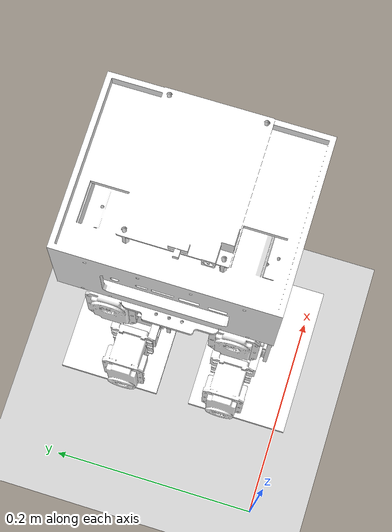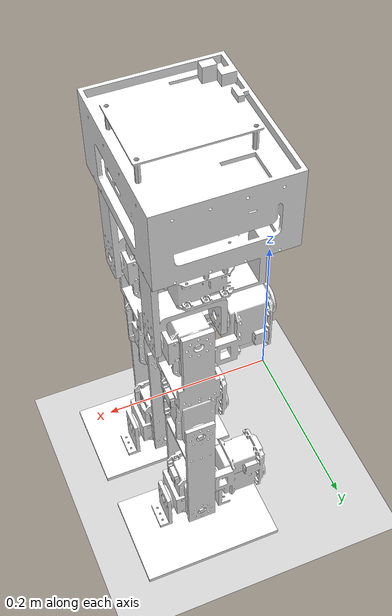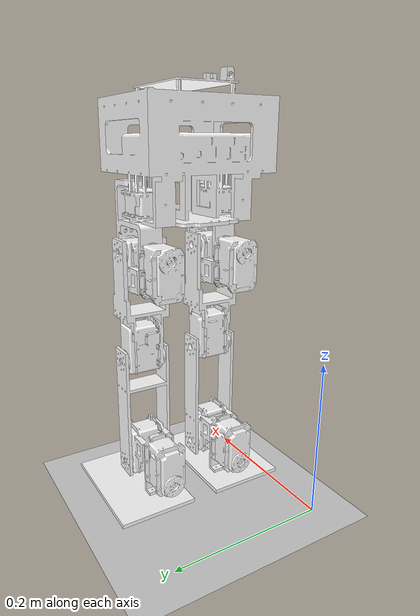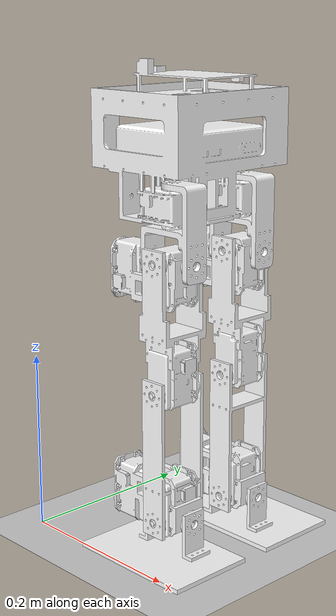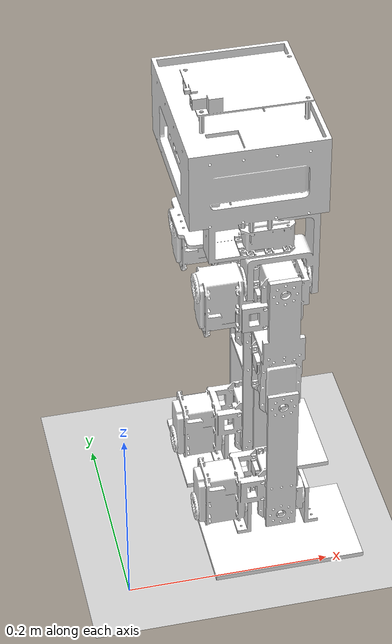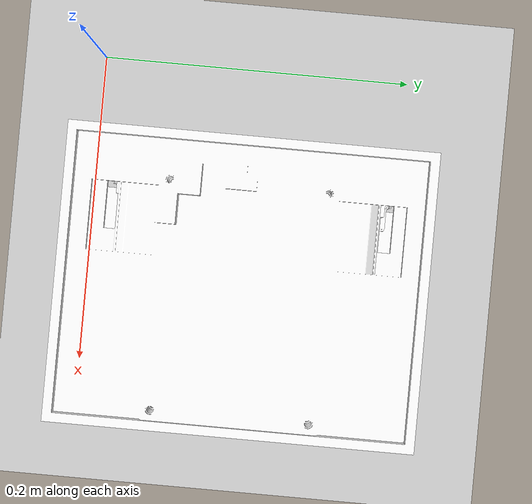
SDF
<?xml version="1.0" ?>
<sdf version="1.6">
  <world name="kubot">
     <physics name="default_physics" default="0" type="ode">
      <max_step_size>0.001</max_step_size>
      <real_time_factor>1</real_time_factor>
      <real_time_update_rate>1000</real_time_update_rate>
      <ode>
        <solver>
          <type>quick</type>
          <iters>100</iters>
          <sor>1.0</sor>
          <use_dynamic_moi_rescaling>false</use_dynamic_moi_rescaling>
        </solver>
      </ode>
    </physics>

    <include>
      <uri>model://ground_plane</uri>
    </include>

    <include>
      <uri>model://sun</uri>
    </include>

    <include>
      <uri>model://kubot22</uri>
    <pose frame=''>0 0 0.40 -1.5708 0 0</pose> <!-- kubot -->
      <plugin name="plugin" filename="libkubot_study_pkg.so"/>
    </include>
  </world>
</sdf>

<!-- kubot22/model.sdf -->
<sdf version='1.6'>
  <model name='kubot22'>
     <joint name="fixed to ground" type="floating">
      <parent>world</parent>
      <child>base_link</child>
    </joint>

    <link name='base_link'>
      <pose frame=''>0 0 0 0 -0 0</pose>
      <inertial>
        <pose frame=''>0.134878 -0.03362 0.106921 0 -0 0</pose>
        <mass>1.17505</mass>
        <inertia>
          <ixx>0.201876</ixx>
          <ixy>0</ixy>
          <ixz>0</ixz>
          <iyy>0.207047</iyy>
          <iyz>0</iyz>
          <izz>0.00947106</izz>
        </inertia>
      </inertial>
      <visual name='base_link_visual'>
        <pose frame=''>0 0 0 0 -0 0</pose>
        <geometry>
          <mesh>
            <scale>1 1 1</scale>
            <uri>model://kubot22/meshes/base_link.STL</uri>
          </mesh>
        </geometry>
	<material>
	 <ambient>47 157 39 1</ambient>
	 <diffuse>1 1 1 1</diffuse>
	 <emissive>0 0 0 1</emissive>
	 <specular>0 0 0 0</specular>
	</material>
      </visual>
    </link>

    <link name='L_P_Link'>
      <pose frame=''>0.159486 0.040474 0.15696 1.5708 -0 0</pose>
      <inertial>
        <pose frame=''>0.010194 -0 -0.000143 0 -0 0</pose>
        <mass>0.03344</mass>
        <inertia>
          <ixx>0.00008</ixx>
          <ixy>0</ixy>
          <ixz>0</ixz>
          <iyy>0.00011</iyy>
          <iyz>0</iyz>
          <izz>0.00003</izz>
        </inertia>
      </inertial>
      <visual name='L_P_Link_visual'>
        <pose frame=''>0 0 0 0 -0 0</pose>
        <geometry>
          <mesh>
            <scale>1 1 1</scale>
            <uri>model://kubot22/meshes/L_P_Link.STL</uri>
          </mesh>
        </geometry>
	<material>
	 <ambient>0 0 128 1</ambient>
	 <diffuse>1 1 1 1</diffuse>
	 <emissive>0 0 0 1</emissive>
	 <specular>0 0 0 0</specular>
	</material>
      </visual>
    </link>
    <joint name='LP' type='revolute'>
      <child>L_P_Link</child>
      <parent>base_link</parent>
      <axis>
        <xyz>0 -1 0</xyz>
        <limit>
          <lower>-3.14</lower>
          <upper>+3.14</upper>
          <effort>0</effort>
          <velocity>0</velocity>
        </limit>
        <dynamics>
          <spring_reference>0</spring_reference>
          <spring_stiffness>0</spring_stiffness>
        </dynamics>
        <use_parent_model_frame>1</use_parent_model_frame>
      </axis>
    </joint>

    <link name='L_Pm_Link'>
      <pose frame=''>0.126966 0.074974 0.15696 1.5708 -0 0</pose>
      <inertial>
        <pose frame=''>0.007077 3.9e-05 -0.015156 0 -0 0</pose>
        <mass>0.26897</mass>
        <inertia>
          <ixx>0.00014</ixx>
          <ixy>0</ixy>
          <ixz>0</ixz>
          <iyy>0.00031</iyy>
          <iyz>0</iyz>
          <izz>0.00022</izz>
        </inertia>
      </inertial>
      <visual name='L_Pm_Link_visual'>
        <pose frame=''>0 0 0 0 -0 0</pose>
        <geometry>
          <mesh>
            <scale>1 1 1</scale>
            <uri>model://kubot22/meshes/L_Pm_Link.STL</uri>
          </mesh>
        </geometry>
	<material>
	 <ambient>47 157 39 1</ambient>
	 <diffuse>1 1 1 1</diffuse>
	 <emissive>0 0 0 1</emissive>
	 <specular>0 0 0 0</specular>
	</material>
      </visual>
    </link>
    <joint name='LPm' type='revolute'>
      <child>L_Pm_Link</child>
      <parent>L_P_Link</parent>
      <axis>
        <xyz>1 0 0</xyz>
        <limit>
          <lower>-3.14</lower>
          <upper>+3.14</upper>
          <effort>0</effort>
          <velocity>0</velocity>
        </limit>
        <dynamics>
          <spring_reference>0</spring_reference>
          <spring_stiffness>0</spring_stiffness>
        </dynamics>
        <use_parent_model_frame>1</use_parent_model_frame>
      </axis>
    </joint>

    <link name='L_Pd_Link'>
      <pose frame=''>0.159666 0.074974 0.18046 1.5708 -0 0</pose>
      <inertial>
        <pose frame=''>2e-06 -0.023322 -0.098565 0 -0 0</pose>
        <mass>0.20444</mass>
        <inertia>
          <ixx>0.00177</ixx>
          <ixy>0</ixy>
          <ixz>0</ixz>
          <iyy>0.00153</iyy>
          <iyz>0</iyz>
          <izz>0.0003</izz>
        </inertia>
      </inertial>
      <visual name='L_Pd_Link_visual'>
        <pose frame=''>0 0 0 0 -0 0</pose>
        <geometry>
          <mesh>
            <scale>1 1 1</scale>
            <uri>model://kubot22/meshes/L_Pd_Link.STL</uri>
          </mesh>
        </geometry>
	<material>
	 <ambient>0 0 128 1</ambient>
	 <diffuse>1 1 1 1</diffuse>
	 <emissive>0 0 0 1</emissive>
	 <specular>0 0 0 0</specular>
	</material>
      </visual>
    </link>
    <joint name='LPd' type='revolute'>
      <child>L_Pd_Link</child>
      <parent>L_Pm_Link</parent>
      <axis>
        <xyz>0 0 1</xyz>
        <limit>
          <lower>-3.14</lower>
          <upper>+3.14</upper>
          <effort>0</effort>
          <velocity>0</velocity>
        </limit>
        <dynamics>
          <spring_reference>0</spring_reference>
          <spring_stiffness>0</spring_stiffness>
        </dynamics>
        <use_parent_model_frame>1</use_parent_model_frame>
      </axis>
    </joint>

    <link name='L_K_Link'>
      <pose frame=''>0.159666 0.212974 0.18306 1.5708 -0 0</pose>
      <inertial>
        <pose frame=''>0 -0.0259 -0.066982 0 -0 0</pose>
        <mass>0.05316</mass>
        <inertia>
          <ixx>0.00038</ixx>
          <ixy>0</ixy>
          <ixz>0</ixz>
          <iyy>0.00032</iyy>
          <iyz>0</iyz>
          <izz>0.00007</izz>
        </inertia>
      </inertial>
      <visual name='L_K_Link_visual'>
        <pose frame=''>0 0 0 0 -0 0</pose>
        <geometry>
          <mesh>
            <scale>1 1 1</scale>
            <uri>model://kubot22/meshes/L_K_Link.STL</uri>
          </mesh>
        </geometry>
	<material>
	 <ambient>0 0 128 1</ambient>
	 <diffuse>1 1 1 1</diffuse>
	 <emissive>0 0 0 1</emissive>
	 <specular>0 0 0 0</specular>
	</material>
      </visual>
    </link>
    <joint name='LK' type='revolute'>
      <child>L_K_Link</child>
      <parent>L_Pd_Link</parent>
      <axis>
        <xyz>0 0 1</xyz>
        <limit>
          <lower>-3.14</lower>
          <upper>+3.14</upper>
          <effort>0</effort>
          <velocity>0</velocity>
        </limit>
        <dynamics>
          <spring_reference>0</spring_reference>
          <spring_stiffness>0</spring_stiffness>
        </dynamics>
        <use_parent_model_frame>1</use_parent_model_frame>
      </axis>
    </joint>

    <link name='L_A_Link'>
      <pose frame=''>0.159666 0.355974 0.18306 1.5708 -0 0</pose>
      <inertial>
        <pose frame=''>-0.025967 -0.025948 0.01564 0 -0 0</pose>
        <mass>0.32297</mass>
        <inertia>
          <ixx>0.0004</ixx>
          <ixy>0</ixy>
          <ixz>0</ixz>
          <iyy>0.00053</iyy>
          <iyz>0</iyz>
          <izz>0.00064</izz>
        </inertia>
      </inertial>
      <visual name='L_A_Link_visual'>
        <pose frame=''>0 0 0 0 -0 0</pose>
        <geometry>
          <mesh>
            <scale>1 1 1</scale>
            <uri>model://kubot22/meshes/L_A_Link.STL</uri>
          </mesh>
        </geometry>
	<material>
	 <ambient>47 157 39 1</ambient>
	 <diffuse>1 1 1 1</diffuse>
	 <emissive>0 0 0 1</emissive>
	 <specular>0 0 0 0</specular>
	</material>
      </visual>
    </link>
    <joint name='LA' type='revolute'>
      <child>L_A_Link</child>
      <parent>L_K_Link</parent>
      <axis>
        <xyz>0 0 1</xyz>
        <limit>
          <lower>-3.14</lower>
          <upper>+3.14</upper>
          <effort>0</effort>
          <velocity>0</velocity>
        </limit>
        <dynamics>
          <spring_reference>0</spring_reference>
          <spring_stiffness>0</spring_stiffness>
        </dynamics>
        <use_parent_model_frame>1</use_parent_model_frame>
      </axis>
    </joint>

    <link name='L_F_Link'>
      <pose frame=''>0.129466 0.355974 0.15706 1.5708 -0 0</pose>
      <inertial>
        <pose frame=''>0.031064 0.014394 -0.034382 0 -0 0</pose>
        <mass>0.05026</mass>
        <inertia>
          <ixx>0.00027</ixx>
          <ixy>0</ixy>
          <ixz>0</ixz>
          <iyy>0.00053</iyy>
          <iyz>0</iyz>
          <izz>0.00064</izz>
        </inertia>
      </inertial>
      <collision name='L_F_Link_collision'>
        <pose frame=''>0.03 0.015 -0.037 0 -0 0</pose>
        <geometry>
	 <box>
	 <size>0.15 0.095 0.005</size>
	 </box>
        </geometry>
            <surface>
             <contact>
              <ode>
    	    <kp>10000000</kp>
                <kd>10000</kd>
                <max_vel>0.1</max_vel>
                <min_depth>0.001</min_depth>
              </ode>
             </contact>
            </surface>
      </collision>
      <visual name='L_F_Link_visual'>
        <pose frame=''>0 0 0 0 -0 0</pose>
        <geometry>
          <mesh>
            <scale>1 1 1</scale>
            <uri>model://kubot22/meshes/L_F_Link.STL</uri>
          </mesh>
        </geometry>
	<material>
	 <ambient>0 0 128 1</ambient>
	 <diffuse>1 1 1 1</diffuse>
	 <emissive>0 0 0 1</emissive>
	 <specular>0 0 0 0</specular>
	</material>
      </visual>
    </link>
    <joint name='LF' type='revolute'>
      <child>L_F_Link</child>
      <parent>L_A_Link</parent>
      <axis>
        <xyz>1 0 0</xyz>
        <limit>
          <lower>-3.14</lower>
          <upper>+3.14</upper>
          <effort>0</effort>
          <velocity>0</velocity>
        </limit>
        <dynamics>
          <spring_reference>0</spring_reference>
          <spring_stiffness>0</spring_stiffness>
        </dynamics>
        <use_parent_model_frame>1</use_parent_model_frame>
      </axis>
    </joint>

    <link name='R_P_Link'>
      <pose frame=''>0.159486 0.040474 0.05696 1.5708 -0 0</pose>
      <inertial>
        <pose frame=''>0.010194 -0 -0.000143 0 -0 0</pose>
        <mass>0.03344</mass>
        <inertia>
          <ixx>0.00008</ixx>
          <ixy>0</ixy>
          <ixz>0</ixz>
          <iyy>0.00011</iyy>
          <iyz>0</iyz>
          <izz>0.00003</izz>
        </inertia>
      </inertial>
      <visual name='R_P_Link_visual'>
        <pose frame=''>0 0 0 0 -0 0</pose>
        <geometry>
          <mesh>
            <scale>1 1 1</scale>
            <uri>model://kubot22/meshes/R_P_Link.STL</uri>
          </mesh>
        </geometry>
	<material>
	 <ambient>0 0 128 1</ambient>
	 <diffuse>1 1 1 1</diffuse>
	 <emissive>0 0 0 1</emissive>
	 <specular>0 0 0 0</specular>
	</material>
      </visual>
    </link>
    <joint name='RP' type='revolute'>
      <child>R_P_Link</child>
      <parent>base_link</parent>
      <axis>
        <xyz>0 -1 0</xyz>
        <limit>
          <lower>-3.14</lower>
          <upper>+3.14</upper>
          <effort>0</effort>
          <velocity>0</velocity>
        </limit>
        <dynamics>
          <spring_reference>0</spring_reference>
          <spring_stiffness>0</spring_stiffness>
        </dynamics>
        <use_parent_model_frame>1</use_parent_model_frame>
      </axis>
    </joint>

    <link name='R_Pm_Link'>
      <pose frame=''>0.126966 0.074974 0.05696 1.5708 -0 0</pose>
      <inertial>
        <pose frame=''>0.007077 -3.9e-05 -0.015156 0 -0 0</pose>
        <mass>0.26897</mass>
        <inertia>
          <ixx>0.0028</ixx>
          <ixy>0</ixy>
          <ixz>0</ixz>
          <iyy>0.00031</iyy>
          <iyz>0</iyz>
          <izz>0.0029</izz>
        </inertia>
      </inertial>
      <visual name='R_Pm_Link_visual'>
        <pose frame=''>0 0 0 0 -0 0</pose>
        <geometry>
          <mesh>
            <scale>1 1 1</scale>
            <uri>model://kubot22/meshes/R_Pm_Link.STL</uri>
          </mesh>
        </geometry>
	<material>
	 <ambient>47 157 39 1</ambient>
	 <diffuse>1 1 1 1</diffuse>
	 <emissive>0 0 0 1</emissive>
	 <specular>0 0 0 0</specular>
	</material>
      </visual>
    </link>
    <joint name='RPm' type='revolute'>
      <child>R_Pm_Link</child>
      <parent>R_P_Link</parent>
      <axis>
        <xyz>1 0 0</xyz>
        <limit>
          <lower>-3.14</lower>
          <upper>+3.14</upper>
          <effort>0</effort>
          <velocity>0</velocity>
        </limit>
        <dynamics>
          <spring_reference>0</spring_reference>
          <spring_stiffness>0</spring_stiffness>
        </dynamics>
        <use_parent_model_frame>1</use_parent_model_frame>
      </axis>
    </joint>

    <link name='R_Pd_Link'>
      <pose frame=''>0.159666 0.074974 0.03346 1.5708 -0 0</pose>
      <inertial>
        <pose frame=''>-2e-06 0.023322 -0.098565 0 -0 0</pose>
        <mass>0.20444</mass>
        <inertia>
          <ixx>0.0048</ixx>
          <ixy>0</ixy>
          <ixz>0</ixz>
          <iyy>0.0015</iyy>
          <iyz>0</iyz>
          <izz>0.0033</izz>
        </inertia>
      </inertial>
      <visual name='R_Pd_Link_visual'>
        <pose frame=''>0 0 0 0 -0 0</pose>
        <geometry>
          <mesh>
            <scale>1 1 1</scale>
            <uri>model://kubot22/meshes/R_Pd_Link.STL</uri>
          </mesh>
        </geometry>
	<material>
	 <ambient>0 0 128 1</ambient>
	 <diffuse>1 1 1 1</diffuse>
	 <emissive>0 0 0 1</emissive>
	 <specular>0 0 0 0</specular>
	</material>
      </visual>
    </link>
    <joint name='RPd' type='revolute'>
      <child>R_Pd_Link</child>
      <parent>R_Pm_Link</parent>
      <axis>
        <xyz>0 0 1</xyz>
        <limit>
          <lower>-3.14</lower>
          <upper>+3.14</upper>
          <effort>0</effort>
          <velocity>0</velocity>
        </limit>
        <dynamics>
          <spring_reference>0</spring_reference>
          <spring_stiffness>0</spring_stiffness>
        </dynamics>
        <use_parent_model_frame>1</use_parent_model_frame>
      </axis>
    </joint>

    <link name='R_K_Link'>
      <pose frame=''>0.159666 0.212974 0.03086 1.5708 -0 0</pose>
      <inertial>
        <pose frame=''>-0 0.0259 -0.076018 0 -0 0</pose>
        <mass>0.05316</mass>
        <inertia>
          <ixx>0.00038</ixx>
          <ixy>0</ixy>
          <ixz>0</ixz>
          <iyy>0.00032</iyy>
          <iyz>0</iyz>
          <izz>0.00007</izz>
        </inertia>
      </inertial>
      <visual name='R_K_Link_visual'>
        <pose frame=''>0 0 0 0 -0 0</pose>
        <geometry>
          <mesh>
            <scale>1 1 1</scale>
            <uri>model://kubot22/meshes/R_K_Link.STL</uri>
          </mesh>
        </geometry>
	<material>
	 <ambient>0 0 128 1</ambient>
	 <diffuse>1 1 1 1</diffuse>
	 <emissive>0 0 0 1</emissive>
	 <specular>0 0 0 0</specular>
	</material>
      </visual>
    </link>
    <joint name='RK' type='revolute'>
      <child>R_K_Link</child>
      <parent>R_Pd_Link</parent>
      <axis>
        <xyz>0 0 1</xyz>
        <limit>
          <lower>-3.14</lower>
          <upper>+3.14</upper>
          <effort>0</effort>
          <velocity>0</velocity>
        </limit>
        <dynamics>
          <spring_reference>0</spring_reference>
          <spring_stiffness>0</spring_stiffness>
        </dynamics>
        <use_parent_model_frame>1</use_parent_model_frame>
      </axis>
    </joint>

    <link name='R_A_Link'>
      <pose frame=''>0.159666 0.355974 0.03086 1.5708 -0 0</pose>
      <inertial>
        <pose frame=''>-0.02597 0.025944 0.01564 0 -0 0</pose>
        <mass>0.32297</mass>
        <inertia>
          <ixx>0.0004</ixx>
          <ixy>0</ixy>
          <ixz>0</ixz>
          <iyy>0.00053</iyy>
          <iyz>0</iyz>
          <izz>0.00064</izz>
        </inertia>
      </inertial>
      <visual name='R_A_Link_visual'>
        <pose frame=''>0 0 0 0 -0 0</pose>
        <geometry>
          <mesh>
            <scale>1 1 1</scale>
            <uri>model://kubot22/meshes/R_A_Link.STL</uri>
          </mesh>
        </geometry>
	<material>
	 <ambient>47 157 39 1</ambient>
	 <diffuse>1 1 1 1</diffuse>
	 <emissive>0 0 0 1</emissive>
	 <specular>0 0 0 0</specular>
	</material>
      </visual>
    </link>
    <joint name='RA' type='revolute'>
      <child>R_A_Link</child>
      <parent>R_K_Link</parent>
      <axis>
        <xyz>0 0 1</xyz>
        <limit>
          <lower>-3.14</lower>
          <upper>+3.14</upper>
          <effort>0</effort>
          <velocity>0</velocity>
        </limit>
        <dynamics>
          <spring_reference>0</spring_reference>
          <spring_stiffness>0</spring_stiffness>
        </dynamics>
        <use_parent_model_frame>1</use_parent_model_frame>
      </axis>
    </joint>

    <link name='R_F_Link'>
      <pose frame=''>0.129466 0.355974 0.05686 1.5708 -0 0</pose>
      <inertial>
        <pose frame=''>0.031064 -0.014388 -0.034388 0 -0 0</pose>
        <mass>0.05026</mass>
        <inertia>
          <ixx>0.00027</ixx>
          <ixy>0</ixy>
          <ixz>0</ixz>
          <iyy>0.00053</iyy>
          <iyz>0</iyz>
          <izz>0.00064</izz>
        </inertia>
      </inertial>
      <collision name='R_F_Link_collision'>
        <pose frame=''>0.03 -0.015 -0.037 0 -0 0</pose>
        <geometry>
	 <box>
	 <size>0.15 0.09 0.005</size>
	 </box>
        </geometry>
            <surface>
             <contact>
              <ode>
    	    <kp>10000000</kp>
                <kd>10000</kd>
                <max_vel>0.1</max_vel>
                <min_depth>0.001</min_depth>
              </ode>
             </contact>
            </surface>
      </collision>
      <visual name='R_F_Link_visual'>
        <pose frame=''>0 0 0 0 -0 0</pose>
        <geometry>
          <mesh>
            <scale>1 1 1</scale>
            <uri>model://kubot22/meshes/R_F_Link.STL</uri>
          </mesh>
        </geometry>
	<material>
	 <ambient>0 0 128 1</ambient>
	 <diffuse>1 1 1 1</diffuse>
	 <emissive>0 0 0 1</emissive>
	 <specular>0 0 0 0</specular>
	</material>
      </visual>
    </link>
    <joint name='RF' type='revolute'>
      <child>R_F_Link</child>
      <parent>R_A_Link</parent>
      <axis>
        <xyz>1 0 0</xyz>
        <limit>
          <lower>-3.14</lower>
          <upper>+3.14</upper>
          <effort>0</effort>
          <velocity>0</velocity>
        </limit>
        <dynamics>
          <spring_reference>0</spring_reference>
          <spring_stiffness>0</spring_stiffness>
        </dynamics>
        <use_parent_model_frame>1</use_parent_model_frame>
      </axis>
    </joint>
  </model>
</sdf>
